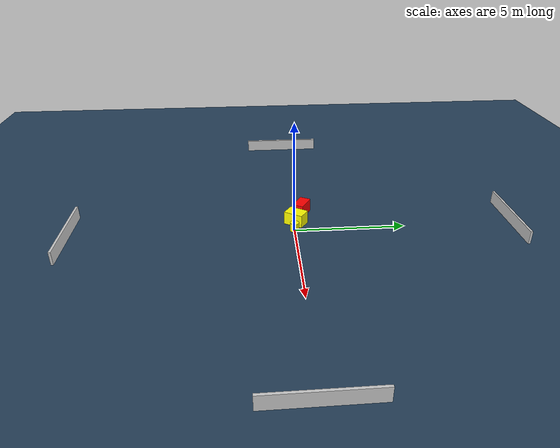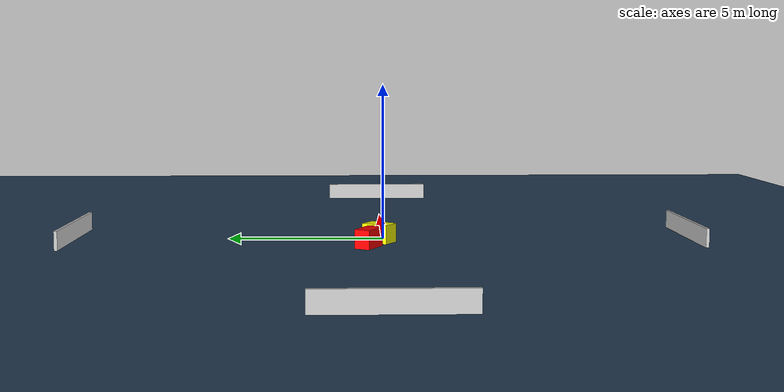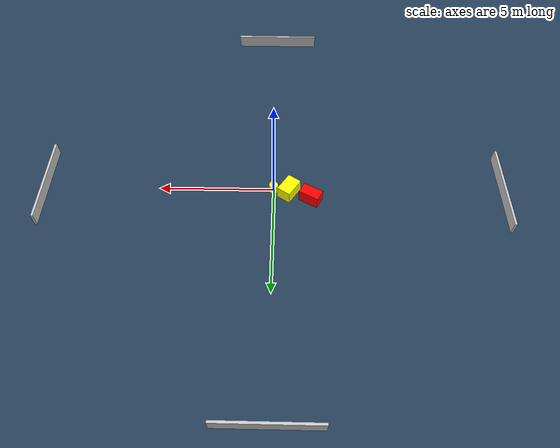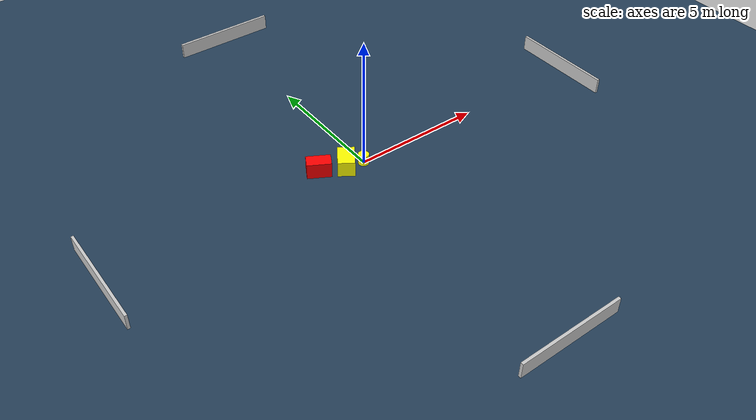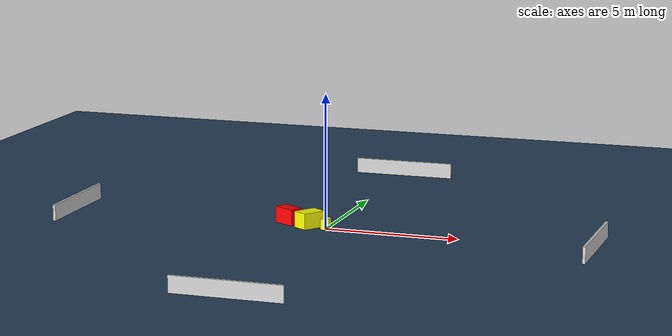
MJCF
<?xml version="1.0" ?>
<mujoco model="generated_environment">
  <option timestep="0.01" integrator="RK4" cone="elliptic"/>
  <default>
    <geom density="1"/>
  </default>
  <asset>
    <texture builtin="gradient" height="3072" name="skybox" rgb1="0.3 0.5 0.7" rgb2="0 0 0" type="skybox" width="512"/>
    <texture builtin="checker" height="300" name="groundplane" rgb1="0.2 0.3 0.4" rgb2="0.1 0.2 0.3" type="2d" width="300"/>
    <material name="groundplane" reflectance="0.2" texrepeat="5 5" texture="groundplane"/>
  </asset>
  <worldbody>
    <light dir="0 0 -1" directional="true" pos="0 0 1.5"/>
    <geom condim="3" friction="0.5 0.005 0.001" material="groundplane" name="floor" pos="0 0 0" size="0 0 0.05" type="plane"/>
    <body name="walls">
      <geom name="wall_1" condim="4" pos="-10.0 0.0 0.3" rgba="0.800000011920929 0.800000011920929 0.800000011920929 1.0" size="0.05 2.0 0.3" type="box"/>
      <geom name="wall_2" condim="4" pos="10.0 0.0 0.3" rgba="0.800000011920929 0.800000011920929 0.800000011920929 1.0" size="0.05 2.0 0.3" type="box"/>
      <geom name="wall_3" condim="4" pos="0.0 -10.0 0.3" rgba="0.800000011920929 0.800000011920929 0.800000011920929 1.0" size="2.0 0.05 0.3" type="box"/>
      <geom name="wall_4" condim="4" pos="0.0 10.0 0.3" rgba="0.800000011920929 0.800000011920929 0.800000011920929 1.0" size="2.0 0.05 0.3" type="box"/>
    </body>
    <body name="robot">
      <joint name="joint_x" type="slide" pos="0 0 0" axis="1 0 0"/>
      <joint name="joint_y" type="slide" pos="0 0 0" axis="0 1 0"/>
      <geom name="robot" type="cylinder" pos="0.0 0.0 0.2" size="0.2 0.2 0.0" mass="5.0" friction="1.0 0.005 0.0001" condim="4" rgba="1.0 1.0 0.0 1.0"/>
    </body>
    <body name="obstacle_1_movable">
      <geom name="obstacle_1_movable" condim="4" pos="-0.675060662275458 0.12590968169526673 0.3" euler="0 0 236.1879620235496" friction="0.0 0.005 0.001" rgba="1.0 1.0 0.0 1.0" size="0.4460445329040862 0.3104976847238886 0.3" type="box" mass="0.1"/>
      <joint type="free"/>
    </body>
    <body name="obstacle_2_static">
      <geom name="obstacle_2_static" condim="4" pos="-1.6112915121586262 0.47079116659753756 0.3" euler="0 0 60.95838633772368" friction="0.0 0.005 0.001" rgba="1.0 0.0 0.0 1.0" size="0.2554444637821301 0.44659131005256947 0.3" type="box"/>
    </body>
  </worldbody>
  <actuator>
    <motor name="actuator_x" joint="joint_x" gear="1" ctrlrange="-1 1"/>
    <motor name="actuator_y" joint="joint_y" gear="1" ctrlrange="-1 1"/>
  </actuator>
</mujoco>
